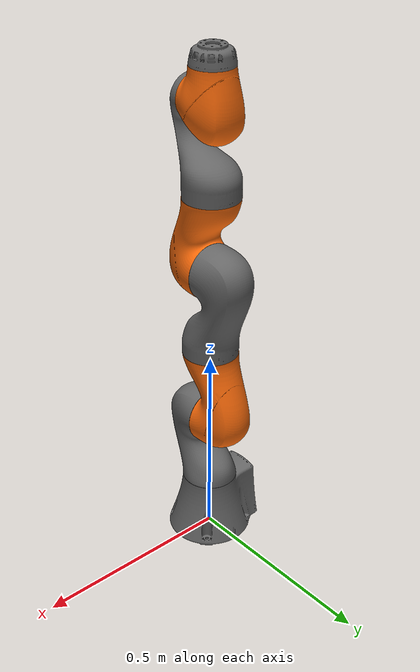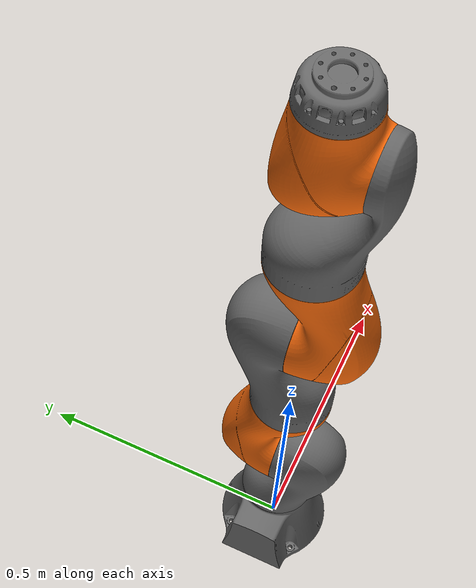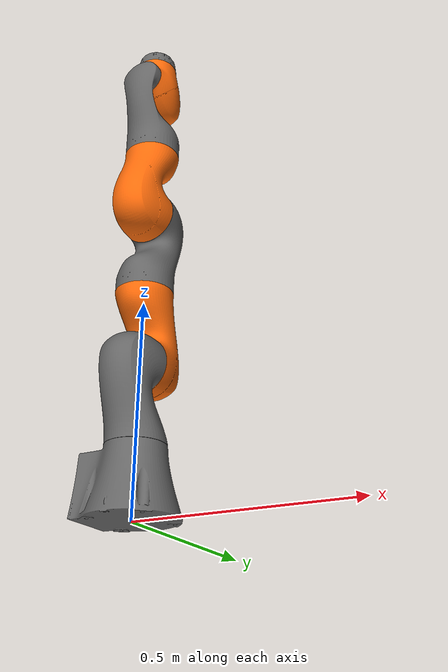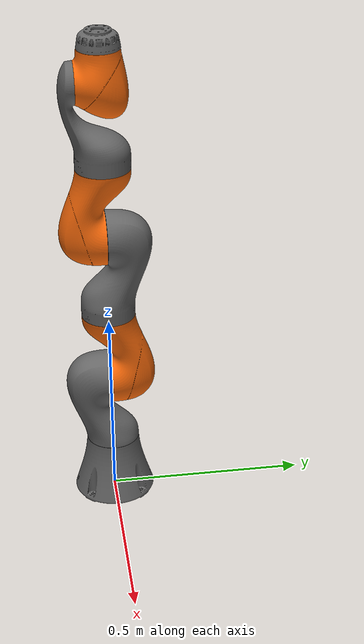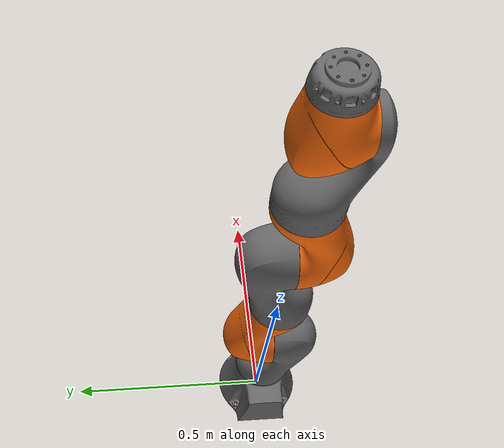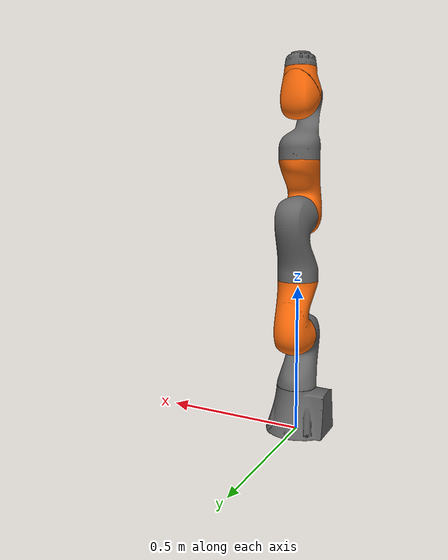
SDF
<?xml version="1.0"?>
<!--https://github.com/RobotLocomotion/models/blob/master/iiwa_description/sdf/iiwa7_no_collision.sdf-->
<sdf version="1.7">
  <model name="iiwa7">
    <link name="iiwa_link_0">
      <inertial>
        <pose>-0.013 0 0.07 0 0 0</pose>
        <mass>3.863</mass>
        <inertia>
          <ixx>0.0141</ixx>
          <ixy>0</ixy>
          <ixz>0</ixz>
          <iyy>0.0171</iyy>
          <iyz>0</iyz>
          <izz>0.0178</izz>
        </inertia>
      </inertial>
      <visual name="iiwa_link_0_visual">
        <geometry>
          <mesh>
            <scale>1 1 1</scale>
            <uri>meshes/link_0.obj</uri>
          </mesh>
        </geometry>
        <material>
          <diffuse>0.4 0.4 0.4 1.0</diffuse>
        </material>
      </visual>
      <gravity>1</gravity>
    </link>
    <link name="iiwa_link_1">
      <pose>0 0 0.1575 0 0 0</pose>
      <inertial>
        <pose>0 -0.0347 0.113 0 0 0</pose>
        <mass>2.7025</mass>
        <inertia>
          <ixx>0.0171</ixx>
          <ixy>0</ixy>
          <ixz>0</ixz>
          <iyy>0.0163</iyy>
          <iyz>0</iyz>
          <izz>0.006</izz>
        </inertia>
      </inertial>
      <visual name="iiwa_link_1_visual">
        <geometry>
          <mesh>
            <scale>1 1 1</scale>
            <uri>meshes/link_1.obj</uri>
          </mesh>
        </geometry>
        <material>
          <diffuse>0.4 0.4 0.4 1.0</diffuse>
        </material>
      </visual>
      <gravity>1</gravity>
    </link>
    <joint name="iiwa_joint_1" type="revolute">
      <child>iiwa_link_1</child>
      <parent>iiwa_link_0</parent>
      <axis>
        <xyz expressed_in="__model__">0 0 1</xyz>
        <limit>
          <lower>-2.96706</lower>
          <upper>2.96706</upper>
          <effort>176</effort>
          <velocity>1.7104226670</velocity>
          <drake:acceleration>8.65</drake:acceleration>
        </limit>
        <dynamics>
          <damping>0.0</damping>
          <friction>0</friction>
          <spring_reference>0</spring_reference>
          <spring_stiffness>0</spring_stiffness>
        </dynamics>
      </axis>
      <drake:gear_ratio>160.0</drake:gear_ratio>
      <drake:rotor_inertia>0.00007171875</drake:rotor_inertia>
    </joint>
    <link name="iiwa_link_2">
      <pose>0 0 0.3405 1.5708 0 -3.14159</pose>
      <inertial>
        <pose>0.000 0.0668 0.0344 0 0 0</pose>
        <mass>2.7258</mass>
        <inertia>
          <ixx>0.0170</ixx>
          <ixy>0</ixy>
          <ixz>0</ixz>
          <iyy>0.0061</iyy>
          <iyz>0</iyz>
          <izz>0.0162</izz>
        </inertia>
      </inertial>
      <visual name="iiwa_link_2_visual">
        <geometry>
          <mesh>
            <scale>1 1 1</scale>
            <uri>meshes/link_2.obj</uri>
          </mesh>
        </geometry>
        <material>
          <diffuse>1.0 0.423529411765 0.0392156862745 1.0</diffuse>
        </material>
      </visual>
      <gravity>1</gravity>
    </link>
    <joint name="iiwa_joint_2" type="revolute">
      <child>iiwa_link_2</child>
      <parent>iiwa_link_1</parent>
      <axis>
        <xyz expressed_in="__model__">-0 1 0</xyz>
        <limit>
          <lower>-2.0944</lower>
          <upper>2.0944</upper>
          <effort>176</effort>
          <velocity>1.7104226670</velocity>
          <drake:acceleration>5.44</drake:acceleration>
        </limit>
        <dynamics>
          <damping>0.0</damping>
          <friction>0</friction>
          <spring_reference>0</spring_reference>
          <spring_stiffness>0</spring_stiffness>
        </dynamics>
      </axis>
      <drake:gear_ratio>160.0</drake:gear_ratio>
      <drake:rotor_inertia>0.0001737109</drake:rotor_inertia>
    </joint>
    <link name="iiwa_link_3">
      <pose>0 0 0.5245 0 0 0</pose>
      <inertial>
        <pose>0 0.0296 0.1265 0 0 0</pose>
        <mass>3.175</mass>
        <inertia>
          <ixx>0.025</ixx>
          <ixy>0</ixy>
          <ixz>0</ixz>
          <iyy>0.0238</iyy>
          <iyz>0</iyz>
          <izz>0.0076</izz>
        </inertia>
      </inertial>
      <visual name="iiwa_link_3_visual">
        <geometry>
          <mesh>
            <scale>1 1 1</scale>
            <uri>meshes/link_3.obj</uri>
          </mesh>
        </geometry>
        <material>
          <diffuse>0.4 0.4 0.4 1.0</diffuse>
        </material>
      </visual>
      <gravity>1</gravity>
    </link>
    <joint name="iiwa_joint_3" type="revolute">
      <child>iiwa_link_3</child>
      <parent>iiwa_link_2</parent>
      <axis>
        <xyz expressed_in="__model__">0 0 1</xyz>
        <limit>
          <lower>-2.96706</lower>
          <upper>2.96706</upper>
          <effort>110</effort>
          <velocity>1.7453292520</velocity>
          <drake:acceleration>5.69</drake:acceleration>
        </limit>
        <dynamics>
          <damping>0.0</damping>
          <friction>0</friction>
          <spring_reference>0</spring_reference>
          <spring_stiffness>0</spring_stiffness>
        </dynamics>
      </axis>
      <drake:gear_ratio>160.0</drake:gear_ratio>
      <drake:rotor_inertia>0.0001266406</drake:rotor_inertia>
    </joint>
    <link name="iiwa_link_4">
      <pose>0 0 0.74 1.5708 0 0</pose>
      <inertial>
        <pose>0 0.067 0.034 0 0 0</pose>
        <mass>2.73</mass>
        <inertia>
          <ixx>0.017</ixx>
          <ixy>0</ixy>
          <ixz>0</ixz>
          <iyy>0.0061</iyy>
          <iyz>0</iyz>
          <izz>0.0162</izz>
        </inertia>
      </inertial>
      <visual name="iiwa_link_4_visual">
        <geometry>
          <mesh>
            <scale>1 1 1</scale>
            <uri>meshes/link_4.obj</uri>
          </mesh>
        </geometry>
        <material>
          <diffuse>1.0 0.423529411765 0.0392156862745 1.0</diffuse>
        </material>
      </visual>
      <gravity>1</gravity>
    </link>
    <joint name="iiwa_joint_4" type="revolute">
      <child>iiwa_link_4</child>
      <parent>iiwa_link_3</parent>
      <axis>
        <xyz expressed_in="__model__">0 -1 0</xyz>
        <limit>
          <lower>-2.0944</lower>
          <upper>2.0944</upper>
          <effort>110</effort>
          <velocity>2.2689280276</velocity>
          <drake:acceleration>11.01</drake:acceleration>
        </limit>
        <dynamics>
          <damping>0.0</damping>
          <friction>0</friction>
          <spring_reference>0</spring_reference>
          <spring_stiffness>0</spring_stiffness>
        </dynamics>
      </axis>
      <drake:gear_ratio>160.0</drake:gear_ratio>
      <drake:rotor_inertia>0.0000709765</drake:rotor_inertia>
    </joint>
    <link name="iiwa_link_5">
      <pose>0 0 0.924 0 0 -3.14159</pose>
      <inertial>
        <pose>0.0001 0.021 0.076 0 0 0</pose>
        <mass>1.69</mass>
        <inertia>
          <ixx>0.01</ixx>
          <ixy>0</ixy>
          <ixz>0</ixz>
          <iyy>0.0087</iyy>
          <iyz>0</iyz>
          <izz>0.00449</izz>
        </inertia>
      </inertial>
      <visual name="iiwa_link_5_visual">
        <geometry>
          <mesh>
            <scale>1 1 1</scale>
            <uri>meshes/link_5.obj</uri>
          </mesh>
        </geometry>
        <material>
          <diffuse>0.4 0.4 0.4 1.0</diffuse>
        </material>
      </visual>
      <gravity>1</gravity>
    </link>
    <joint name="iiwa_joint_5" type="revolute">
      <child>iiwa_link_5</child>
      <parent>iiwa_link_4</parent>
      <axis>
        <xyz expressed_in="__model__">0 0 1</xyz>
        <limit>
          <lower>-2.96706</lower>
          <upper>2.96706</upper>
          <effort>110</effort>
          <velocity>2.4434609528</velocity>
          <drake:acceleration>11.78</drake:acceleration>
        </limit>
        <dynamics>
          <damping>0.0</damping>
          <friction>0</friction>
          <spring_reference>0</spring_reference>
          <spring_stiffness>0</spring_stiffness>
        </dynamics>
      </axis>
      <drake:gear_ratio>160.0</drake:gear_ratio>
      <drake:rotor_inertia>0.000054375</drake:rotor_inertia>
    </joint>
    <link name="iiwa_link_6">
      <pose>0 0 1.1395 1.5708 0 -3.14159</pose>
      <inertial>
        <pose>0 0.0026 0.0005 0 0 0</pose>
        <mass>1.8</mass>
        <inertia>
          <ixx>0.0051</ixx>
          <ixy>0</ixy>
          <ixz>0</ixz>
          <iyy>0.0049</iyy>
          <iyz>0</iyz>
          <izz>0.0035</izz>
        </inertia>
      </inertial>
      <visual name="iiwa_link_6_visual">
        <pose>0 0 -0.060700 0 0 0</pose>
        <geometry>
          <mesh>
            <scale>1 1 1</scale>
            <uri>meshes/link_6.obj</uri>
          </mesh>
        </geometry>
        <material>
          <diffuse>1.0 0.423529411765 0.0392156862745 1.0</diffuse>
        </material>
      </visual>
      <gravity>1</gravity>
    </link>
    <joint name="iiwa_joint_6" type="revolute">
      <child>iiwa_link_6</child>
      <parent>iiwa_link_5</parent>
      <axis>
        <xyz expressed_in="__model__">-0 1 -0</xyz>
        <limit>
          <lower>-2.0944</lower>
          <upper>2.0944</upper>
          <effort>40</effort>
          <velocity>3.1415926536</velocity>
          <drake:acceleration>13.76</drake:acceleration>
        </limit>
        <dynamics>
          <damping>0.0</damping>
          <friction>0</friction>
          <spring_reference>0</spring_reference>
          <spring_stiffness>0</spring_stiffness>
        </dynamics>
      </axis>
      <drake:gear_ratio>160.0</drake:gear_ratio>
      <drake:rotor_inertia>0.000054765</drake:rotor_inertia>
    </joint>
    <link name="iiwa_link_7">
      <pose>0 0 1.22 0 0 0</pose>
      <inertial>
        <pose>0 0 0.0294 0 0 0</pose>
        <mass>.4</mass>
        <inertia>
          <ixx>0.0004</ixx>
          <ixy>0</ixy>
          <ixz>0</ixz>
          <iyy>0.0004</iyy>
          <iyz>0</iyz>
          <izz>0.0005</izz>
        </inertia>
      </inertial>
      <visual name="iiwa_link_7_visual">
        <geometry>
          <mesh>
            <scale>1 1 1</scale>
            <uri>meshes/link_7.obj</uri>
          </mesh>
        </geometry>
        <material>
          <diffuse>0.4 0.4 0.4 1.0</diffuse>
        </material>
      </visual>
      <gravity>1</gravity>
    </link>
    <joint name="iiwa_joint_7" type="revolute">
      <child>iiwa_link_7</child>
      <parent>iiwa_link_6</parent>
      <axis>
        <xyz expressed_in="__model__">0 0 1</xyz>
        <limit>
          <lower>-3.05433</lower>
          <upper>3.05433</upper>
          <effort>40</effort>
          <velocity>3.1415926536</velocity>
          <drake:acceleration>13.17</drake:acceleration>
        </limit>
        <dynamics>
          <damping>0.0</damping>
          <friction>0</friction>
          <spring_reference>0</spring_reference>
          <spring_stiffness>0</spring_stiffness>
        </dynamics>
      </axis>
      <drake:gear_ratio>160.0</drake:gear_ratio>
      <drake:rotor_inertia>0.000054375</drake:rotor_inertia>
    </joint>
    <static>0</static>
  </model>
</sdf>
